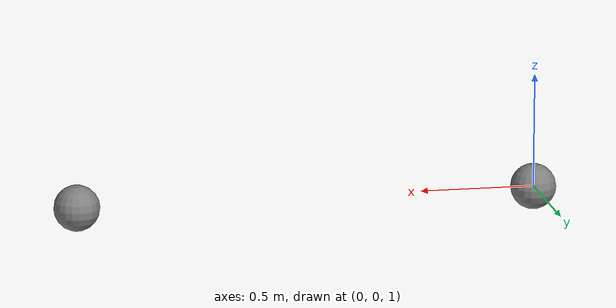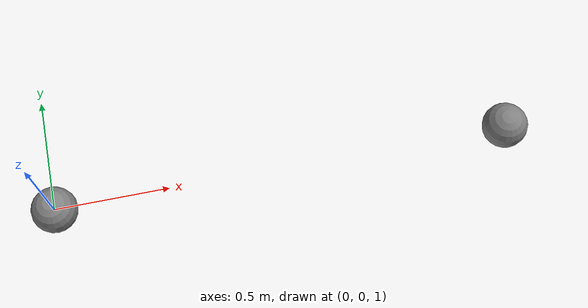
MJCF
<mujoco>
    <option density="0" viscosity="0" integrator="implicit">
        <flag sleep="enable"/>
    </option>
    <worldbody>
        <body name="body1" pos="0 0 1" sleep="init">
            <joint name="j1" type="hinge" axis="0 1 0" damping="0"/>
            <geom type="sphere" size="0.1" mass="1"/>
        </body>
        <body name="body2" pos="2 0 1" sleep="init">
            <joint name="j2" type="hinge" axis="0 1 0" damping="0"/>
            <geom type="sphere" size="0.1" mass="1"/>
        </body>
    </worldbody>
    <tendon>
        <fixed name="t0" damping="5.0">
            <joint joint="j1" coef="0.7"/>
            <joint joint="j2" coef="0.3"/>
        </fixed>
    </tendon>
</mujoco>
